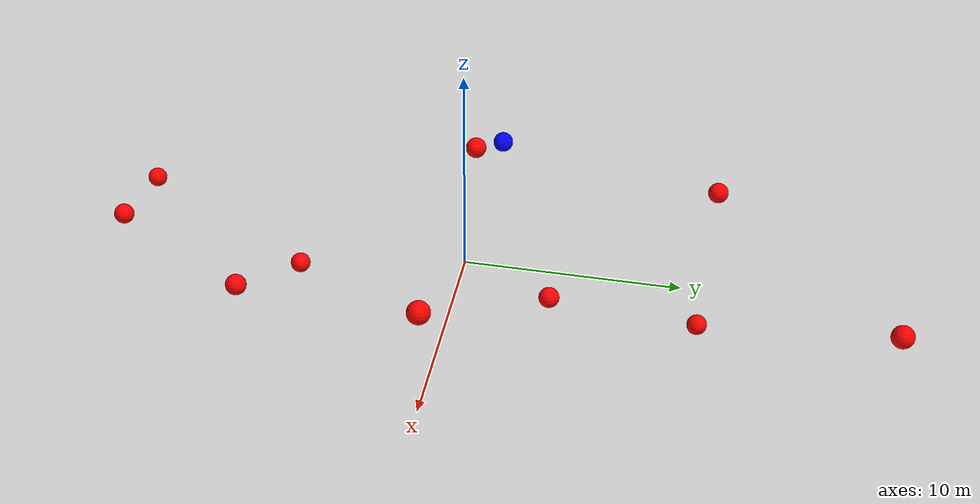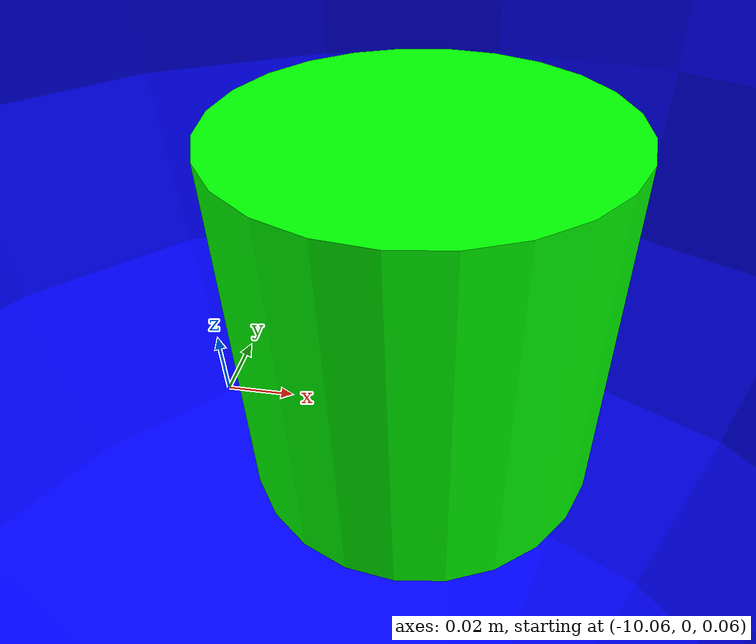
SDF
<?xml version="1.0" ?>
<sdf version="1.8">
    <world name="3d_world">
        <physics name="1ms" type="ode">
            <max_step_size>0.001</max_step_size>
            <real_time_factor>1.0</real_time_factor>
            <real_time_update_rate>1000.0</real_time_update_rate>
        </physics>
        <gravity>0 0 0</gravity>

        <plugin
            filename="gz-sim-physics-system"
            name="gz::sim::v8::systems::Physics">
        </plugin>
        <plugin
            filename="libignition-gazebo-user-commands-system.so"
            name="ignition::gazebo::systems::UserCommands">
        </plugin>
        <plugin
            filename="gz-sim-scene-broadcaster-system"
            name="gz::sim::systems::SceneBroadcaster">
        </plugin>
        <plugin
            filename="gz-sim-sensors-system"
            name="gz::sim::systems::Sensors">
            <render_engine>ogre2</render_engine>
        </plugin>

        <light type="directional" name="sun">
            <cast_shadows>true</cast_shadows>
            <pose>0 0 10 0 0 0</pose>
            <diffuse>0.8 0.8 0.8 1</diffuse>
            <specular>0.2 0.2 0.2 1</specular>
            <attenuation>
                <range>1000</range>
                <constant>0.9</constant>
                <linear>0.01</linear>
                <quadratic>0.001</quadratic>
            </attenuation>
            <direction>-0.5 0.1 -0.9</direction>
        </light>

        <!-- AGENTE -->
        <model name='agente' canonical_link='chassis'>
            <pose relative_to='world'>-10.0 0 0.0 0 0 0</pose>
            <link name='chassis'>
                <pose relative_to='__model__'>0.0 0 0.0 0 0 0</pose>
                <inertial>
                    <mass>1.14395</mass>
                    <inertia>
                        <ixx>0.095329</ixx>
                        <ixy>0</ixy>
                        <ixz>0</ixz>
                        <iyy>0.381317</iyy>
                        <iyz>0</iyz>
                        <izz>0.476646</izz>
                    </inertia>
                </inertial>
                <visual name='visual'>
                    <geometry>
                        <sphere>
                            <radius>0.5</radius>
                        </sphere>
                    </geometry>
                    <material>
                        <ambient>0.0 0.0 1.0 1</ambient>
                        <diffuse>0.0 0.0 1.0 1</diffuse>
                        <specular>0.0 0.0 1.0 1</specular>
                    </material>
                </visual>
                <collision name='collision'>
                    <geometry>
                        <sphere>
                            <radius>0.5</radius>
                        </sphere>
                    </geometry>
                </collision>
                <enable_gravity>false</enable_gravity>
            </link>

            <link name='lidar_link'>
                <pose relative_to='chassis'>0.0 0 0.1 0 0 0</pose>
                <inertial>
                    <mass>0.1</mass>
                    <inertia>
                        <ixx>0.000166667</ixx>
                        <iyy>0.000166667</iyy>
                        <izz>0.000166667</izz>
                    </inertia>
                </inertial>
                <collision name='collision'>
                    <geometry>
                        <cylinder>
                            <radius>0.05</radius>
                            <length>0.1</length>
                        </cylinder>
                    </geometry>
                </collision>
                <visual name='visual'>
                    <geometry>
                        <cylinder>
                            <radius>0.05</radius>
                            <length>0.1</length>
                        </cylinder>
                    </geometry>
                    <material>
                        <ambient>0.0 1.0 0.0 1</ambient>
                        <diffuse>0.0 1.0 0.0 1</diffuse>
                        <specular>0.0 1.0 0.0 1</specular>
                    </material>
                </visual>
                <sensor name="lidar" type="gpu_lidar">
                    <topic>scan</topic>
                    <update_rate>10</update_rate>
                    <lidar>
                        <scan>
                            <horizontal>
                                <samples>5000</samples>
                                <resolution>1</resolution>
                                <min_angle>-3.14159</min_angle>
                                <max_angle>3.14159</max_angle>
                            </horizontal>
                        </scan>
                        <range>
                            <min>0.1</min>
                            <max>10.0</max>
                            <resolution>0.01</resolution>
                        </range>
                    </lidar>
                    <visualize>true</visualize>
                    <always_on>true</always_on>
                    <update_rate>10</update_rate>
                    <pose_frame>lidar</pose_frame>
                </sensor>
                <enable_gravity>false</enable_gravity>
            </link>

            <joint name="lidar_joint" type="fixed">
                <parent>chassis</parent>
                <child>lidar_link</child>
            </joint>

            <plugin
                filename="ignition-gazebo-joint-state-publisher-system"
                name="ignition::gazebo::systems::JointStatePublisher">
            </plugin>
            <plugin
                filename="ignition-gazebo-odometry-publisher-system"
                name="ignition::gazebo::systems::OdometryPublisher">
                <dimensions>3</dimensions>
            </plugin>
            <plugin
                filename="ignition-gazebo-velocity-control-system"
                name="ignition::gazebo::systems::VelocityControl">
                <initial_linear>0.0 0 0</initial_linear>
                <initial_angular>0 0 0.0</initial_angular>
            </plugin>
            <plugin
                filename="libignition-gazebo-pose-publisher-system.so"
                name="ignition::gazebo::systems::PosePublisher">
                <topic>/agente/pose</topic>
                <frame_id>agente</frame_id>
                <update_rate>30</update_rate>
            </plugin>
        </model>

        <!-- OBSTACLE 1 -->
        <model name='obstacle_1' canonical_link='obstacle'>
            <static>false</static>
            <pose relative_to='world'>-1.25 3.83 -2.59 0 0 0</pose>
            <link name='obstacle'>
                <pose relative_to='__model__'>0.0 0 0.0 0 0 0</pose>
                <visual name='visual'>
                    <geometry>
                        <sphere>
                            <radius>0.50</radius>
                        </sphere>
                    </geometry>
                    <material>
                        <ambient>1.0 0.0 0.0 1</ambient>
                        <diffuse>1.0 0.0 0.0 1</diffuse>
                        <specular>1.0 0.0 0.0 1</specular>
                    </material>
                </visual>
                <collision name='collision'>
                    <geometry>
                        <sphere>
                            <radius>0.50</radius>
                        </sphere>
                    </geometry>
                </collision>
                <enable_gravity>false</enable_gravity>
            </link>

            <plugin
                filename="ignition-gazebo-velocity-control-system"
                name="ignition::gazebo::systems::VelocityControl">
                <initial_linear>0.94 -0.68 0.46</initial_linear>
                <initial_angular>0 0 0</initial_angular>
            </plugin>

            <plugin
                filename="ignition-gazebo-odometry-publisher-system"
                name="ignition::gazebo::systems::OdometryPublisher">
                <dimensions>3</dimensions>
            </plugin>
        </model>

        <!-- OBSTACLE 2 -->
        <model name='obstacle_2' canonical_link='obstacle'>
            <static>false</static>
            <pose relative_to='world'>-8.68 -18.81 -3.90 0 0 0</pose>
            <link name='obstacle'>
                <pose relative_to='__model__'>0.0 0 0.0 0 0 0</pose>
                <visual name='visual'>
                    <geometry>
                        <sphere>
                            <radius>0.50</radius>
                        </sphere>
                    </geometry>
                    <material>
                        <ambient>1.0 0.0 0.0 1</ambient>
                        <diffuse>1.0 0.0 0.0 1</diffuse>
                        <specular>1.0 0.0 0.0 1</specular>
                    </material>
                </visual>
                <collision name='collision'>
                    <geometry>
                        <sphere>
                            <radius>0.50</radius>
                        </sphere>
                    </geometry>
                </collision>
                <enable_gravity>false</enable_gravity>
            </link>

            <plugin
                filename="ignition-gazebo-velocity-control-system"
                name="ignition::gazebo::systems::VelocityControl">
                <initial_linear>1.11 1.63 0.34</initial_linear>
                <initial_angular>0 0 0</initial_angular>
            </plugin>

            <plugin
                filename="ignition-gazebo-odometry-publisher-system"
                name="ignition::gazebo::systems::OdometryPublisher">
                <dimensions>3</dimensions>
            </plugin>
        </model>

        <!-- OBSTACLE 3 -->
        <model name='obstacle_3' canonical_link='obstacle'>
            <static>false</static>
            <pose relative_to='world'>-6.55 -0.75 1.88 0 0 0</pose>
            <link name='obstacle'>
                <pose relative_to='__model__'>0.0 0 0.0 0 0 0</pose>
                <visual name='visual'>
                    <geometry>
                        <sphere>
                            <radius>0.50</radius>
                        </sphere>
                    </geometry>
                    <material>
                        <ambient>1.0 0.0 0.0 1</ambient>
                        <diffuse>1.0 0.0 0.0 1</diffuse>
                        <specular>1.0 0.0 0.0 1</specular>
                    </material>
                </visual>
                <collision name='collision'>
                    <geometry>
                        <sphere>
                            <radius>0.50</radius>
                        </sphere>
                    </geometry>
                </collision>
                <enable_gravity>false</enable_gravity>
            </link>

            <plugin
                filename="ignition-gazebo-velocity-control-system"
                name="ignition::gazebo::systems::VelocityControl">
                <initial_linear>1.82 0.15 -0.37</initial_linear>
                <initial_angular>0 0 0</initial_angular>
            </plugin>

            <plugin
                filename="ignition-gazebo-odometry-publisher-system"
                name="ignition::gazebo::systems::OdometryPublisher">
                <dimensions>3</dimensions>
            </plugin>
        </model>

        <!-- OBSTACLE 4 -->
        <model name='obstacle_4' canonical_link='obstacle'>
            <static>false</static>
            <pose relative_to='world'>-7.87 11.19 -0.14 0 0 0</pose>
            <link name='obstacle'>
                <pose relative_to='__model__'>0.0 0 0.0 0 0 0</pose>
                <visual name='visual'>
                    <geometry>
                        <sphere>
                            <radius>0.50</radius>
                        </sphere>
                    </geometry>
                    <material>
                        <ambient>1.0 0.0 0.0 1</ambient>
                        <diffuse>1.0 0.0 0.0 1</diffuse>
                        <specular>1.0 0.0 0.0 1</specular>
                    </material>
                </visual>
                <collision name='collision'>
                    <geometry>
                        <sphere>
                            <radius>0.50</radius>
                        </sphere>
                    </geometry>
                </collision>
                <enable_gravity>false</enable_gravity>
            </link>

            <plugin
                filename="ignition-gazebo-velocity-control-system"
                name="ignition::gazebo::systems::VelocityControl">
                <initial_linear>1.45 -1.38 0.02</initial_linear>
                <initial_angular>0 0 0</initial_angular>
            </plugin>

            <plugin
                filename="ignition-gazebo-odometry-publisher-system"
                name="ignition::gazebo::systems::OdometryPublisher">
                <dimensions>3</dimensions>
            </plugin>
        </model>

        <!-- OBSTACLE 5 -->
        <model name='obstacle_5' canonical_link='obstacle'>
            <static>false</static>
            <pose relative_to='world'>4.38 19.33 2.50 0 0 0</pose>
            <link name='obstacle'>
                <pose relative_to='__model__'>0.0 0 0.0 0 0 0</pose>
                <visual name='visual'>
                    <geometry>
                        <sphere>
                            <radius>0.50</radius>
                        </sphere>
                    </geometry>
                    <material>
                        <ambient>1.0 0.0 0.0 1</ambient>
                        <diffuse>1.0 0.0 0.0 1</diffuse>
                        <specular>1.0 0.0 0.0 1</specular>
                    </material>
                </visual>
                <collision name='collision'>
                    <geometry>
                        <sphere>
                            <radius>0.50</radius>
                        </sphere>
                    </geometry>
                </collision>
                <enable_gravity>false</enable_gravity>
            </link>

            <plugin
                filename="ignition-gazebo-velocity-control-system"
                name="ignition::gazebo::systems::VelocityControl">
                <initial_linear>0.19 -1.97 -0.25</initial_linear>
                <initial_angular>0 0 0</initial_angular>
            </plugin>

            <plugin
                filename="ignition-gazebo-odometry-publisher-system"
                name="ignition::gazebo::systems::OdometryPublisher">
                <dimensions>3</dimensions>
            </plugin>
        </model>

        <!-- OBSTACLE 6 -->
        <model name='obstacle_6' canonical_link='obstacle'>
            <static>false</static>
            <pose relative_to='world'>2.53 -10.39 -0.98 0 0 0</pose>
            <link name='obstacle'>
                <pose relative_to='__model__'>0.0 0 0.0 0 0 0</pose>
                <visual name='visual'>
                    <geometry>
                        <sphere>
                            <radius>0.50</radius>
                        </sphere>
                    </geometry>
                    <material>
                        <ambient>1.0 0.0 0.0 1</ambient>
                        <diffuse>1.0 0.0 0.0 1</diffuse>
                        <specular>1.0 0.0 0.0 1</specular>
                    </material>
                </visual>
                <collision name='collision'>
                    <geometry>
                        <sphere>
                            <radius>0.50</radius>
                        </sphere>
                    </geometry>
                </collision>
                <enable_gravity>false</enable_gravity>
            </link>

            <plugin
                filename="ignition-gazebo-velocity-control-system"
                name="ignition::gazebo::systems::VelocityControl">
                <initial_linear>-0.59 1.90 0.18</initial_linear>
                <initial_angular>0 0 0</initial_angular>
            </plugin>

            <plugin
                filename="ignition-gazebo-odometry-publisher-system"
                name="ignition::gazebo::systems::OdometryPublisher">
                <dimensions>3</dimensions>
            </plugin>
        </model>

        <!-- OBSTACLE 7 -->
        <model name='obstacle_7' canonical_link='obstacle'>
            <static>false</static>
            <pose relative_to='world'>-3.61 -9.30 -4.36 0 0 0</pose>
            <link name='obstacle'>
                <pose relative_to='__model__'>0.0 0 0.0 0 0 0</pose>
                <visual name='visual'>
                    <geometry>
                        <sphere>
                            <radius>0.50</radius>
                        </sphere>
                    </geometry>
                    <material>
                        <ambient>1.0 0.0 0.0 1</ambient>
                        <diffuse>1.0 0.0 0.0 1</diffuse>
                        <specular>1.0 0.0 0.0 1</specular>
                    </material>
                </visual>
                <collision name='collision'>
                    <geometry>
                        <sphere>
                            <radius>0.50</radius>
                        </sphere>
                    </geometry>
                </collision>
                <enable_gravity>false</enable_gravity>
            </link>

            <plugin
                filename="ignition-gazebo-velocity-control-system"
                name="ignition::gazebo::systems::VelocityControl">
                <initial_linear>1.00 1.57 0.74</initial_linear>
                <initial_angular>0 0 0</initial_angular>
            </plugin>

            <plugin
                filename="ignition-gazebo-odometry-publisher-system"
                name="ignition::gazebo::systems::OdometryPublisher">
                <dimensions>3</dimensions>
            </plugin>
        </model>

        <!-- OBSTACLE 8 -->
        <model name='obstacle_8' canonical_link='obstacle'>
            <static>false</static>
            <pose relative_to='world'>-2.71 -18.08 -1.85 0 0 0</pose>
            <link name='obstacle'>
                <pose relative_to='__model__'>0.0 0 0.0 0 0 0</pose>
                <visual name='visual'>
                    <geometry>
                        <sphere>
                            <radius>0.50</radius>
                        </sphere>
                    </geometry>
                    <material>
                        <ambient>1.0 0.0 0.0 1</ambient>
                        <diffuse>1.0 0.0 0.0 1</diffuse>
                        <specular>1.0 0.0 0.0 1</specular>
                    </material>
                </visual>
                <collision name='collision'>
                    <geometry>
                        <sphere>
                            <radius>0.50</radius>
                        </sphere>
                    </geometry>
                </collision>
                <enable_gravity>false</enable_gravity>
            </link>

            <plugin
                filename="ignition-gazebo-velocity-control-system"
                name="ignition::gazebo::systems::VelocityControl">
                <initial_linear>0.87 1.79 0.18</initial_linear>
                <initial_angular>0 0 0</initial_angular>
            </plugin>

            <plugin
                filename="ignition-gazebo-odometry-publisher-system"
                name="ignition::gazebo::systems::OdometryPublisher">
                <dimensions>3</dimensions>
            </plugin>
        </model>

        <!-- OBSTACLE 9 -->
        <model name='obstacle_9' canonical_link='obstacle'>
            <static>false</static>
            <pose relative_to='world'>-3.16 10.91 -4.77 0 0 0</pose>
            <link name='obstacle'>
                <pose relative_to='__model__'>0.0 0 0.0 0 0 0</pose>
                <visual name='visual'>
                    <geometry>
                        <sphere>
                            <radius>0.50</radius>
                        </sphere>
                    </geometry>
                    <material>
                        <ambient>1.0 0.0 0.0 1</ambient>
                        <diffuse>1.0 0.0 0.0 1</diffuse>
                        <specular>1.0 0.0 0.0 1</specular>
                    </material>
                </visual>
                <collision name='collision'>
                    <geometry>
                        <sphere>
                            <radius>0.50</radius>
                        </sphere>
                    </geometry>
                </collision>
                <enable_gravity>false</enable_gravity>
            </link>

            <plugin
                filename="ignition-gazebo-velocity-control-system"
                name="ignition::gazebo::systems::VelocityControl">
                <initial_linear>1.13 -1.51 0.66</initial_linear>
                <initial_angular>0 0 0</initial_angular>
            </plugin>

            <plugin
                filename="ignition-gazebo-odometry-publisher-system"
                name="ignition::gazebo::systems::OdometryPublisher">
                <dimensions>3</dimensions>
            </plugin>
        </model>

        <!-- OBSTACLE 10 -->
        <model name='obstacle_10' canonical_link='obstacle'>
            <static>false</static>
            <pose relative_to='world'>9.46 0.05 4.93 0 0 0</pose>
            <link name='obstacle'>
                <pose relative_to='__model__'>0.0 0 0.0 0 0 0</pose>
                <visual name='visual'>
                    <geometry>
                        <sphere>
                            <radius>0.50</radius>
                        </sphere>
                    </geometry>
                    <material>
                        <ambient>1.0 0.0 0.0 1</ambient>
                        <diffuse>1.0 0.0 0.0 1</diffuse>
                        <specular>1.0 0.0 0.0 1</specular>
                    </material>
                </visual>
                <collision name='collision'>
                    <geometry>
                        <sphere>
                            <radius>0.50</radius>
                        </sphere>
                    </geometry>
                </collision>
                <enable_gravity>false</enable_gravity>
            </link>

            <plugin
                filename="ignition-gazebo-velocity-control-system"
                name="ignition::gazebo::systems::VelocityControl">
                <initial_linear>-1.28 -0.01 -0.96</initial_linear>
                <initial_angular>0 0 0</initial_angular>
            </plugin>

            <plugin
                filename="ignition-gazebo-odometry-publisher-system"
                name="ignition::gazebo::systems::OdometryPublisher">
                <dimensions>3</dimensions>
            </plugin>
        </model>

    </world>
</sdf>
